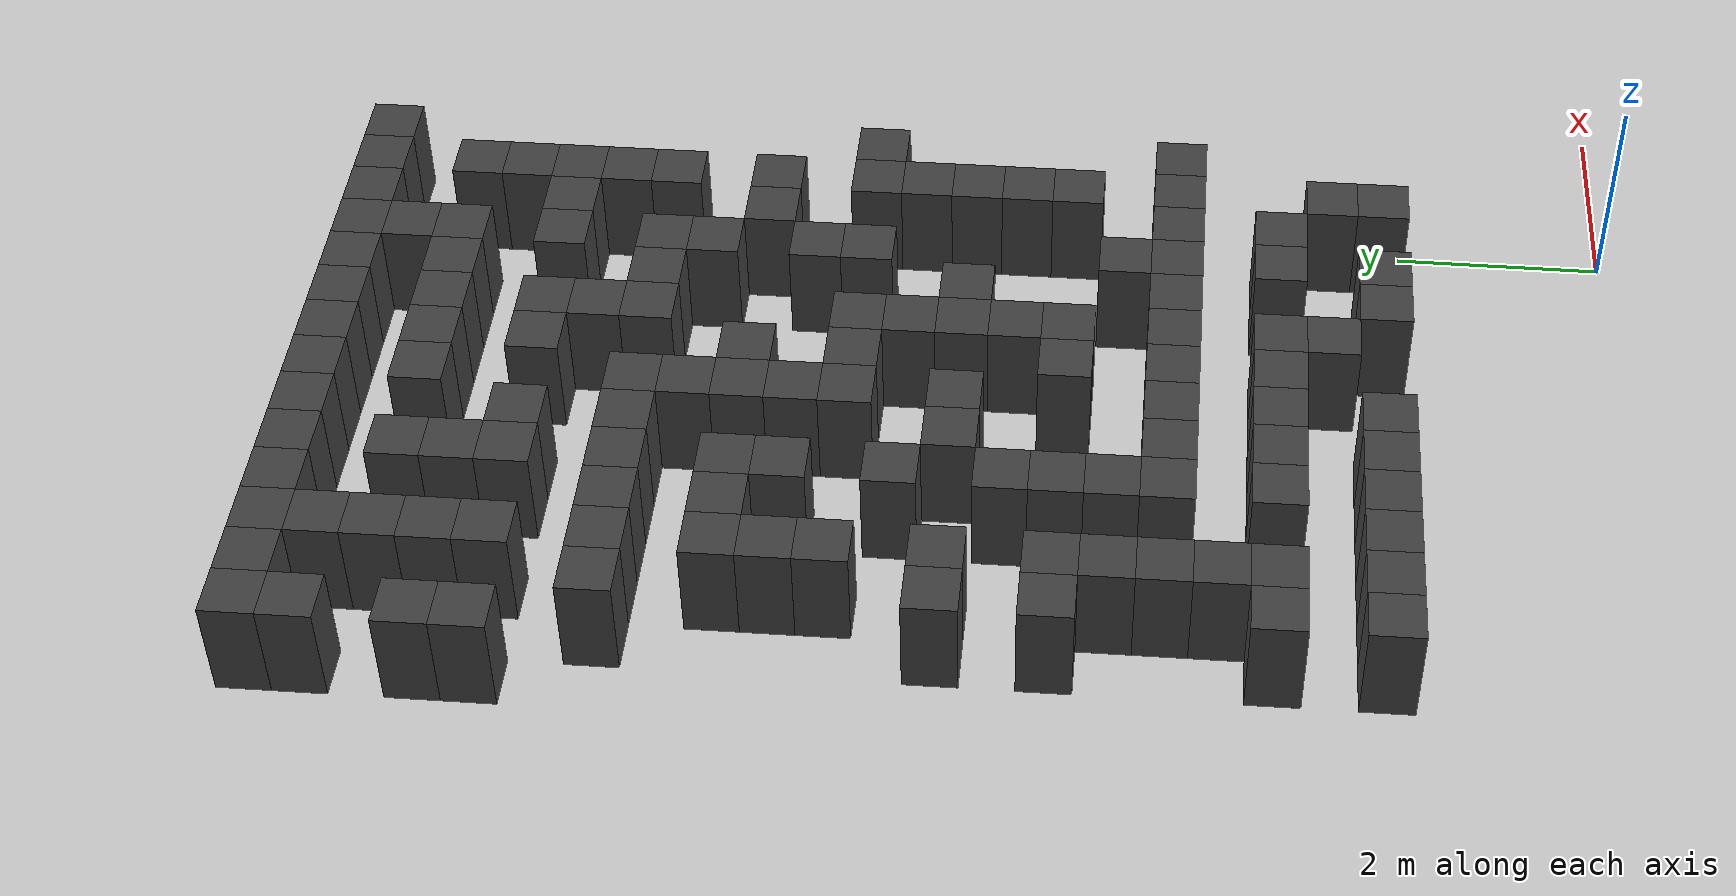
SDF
<sdf version="1.7">
 <world name="map_16588">
  <model name="ground_plane">
   <static>true</static>
   <link name="link">
    <collision name="collision">
     <geometry><plane><normal>0 0 1</normal><size>200 200</size></plane></geometry>
    </collision>
    <visual name="visual">
     <geometry><plane><normal>0 0 1</normal><size>200 200</size></plane></geometry>
     <material><ambient>0.8 0.8 0.8 1</ambient><diffuse>0.8 0.8 0.8 1</diffuse></material>
    </visual>
   </link>
  </model>
  <model name="maze_environment">
   <static>true</static>
   <link name="wall_12">
    <pose>-6.250 12.250 0.500 0 0 0</pose>
    <collision name="col"><geometry><box><size>0.5 0.5 1.0</size></box></geometry></collision>
    <visual name="vis">
     <geometry><box><size>0.5 0.5 1.0</size></box></geometry>
     <material><ambient>0.15 0.15 0.15 1</ambient><diffuse>0.25 0.25 0.25 1</diffuse></material>
    </visual>
   </link>
   <link name="wall_13">
    <pose>-5.750 12.250 0.500 0 0 0</pose>
    <collision name="col"><geometry><box><size>0.5 0.5 1.0</size></box></geometry></collision>
    <visual name="vis">
     <geometry><box><size>0.5 0.5 1.0</size></box></geometry>
     <material><ambient>0.15 0.15 0.15 1</ambient><diffuse>0.25 0.25 0.25 1</diffuse></material>
    </visual>
   </link>
   <link name="wall_14">
    <pose>-5.250 12.250 0.500 0 0 0</pose>
    <collision name="col"><geometry><box><size>0.5 0.5 1.0</size></box></geometry></collision>
    <visual name="vis">
     <geometry><box><size>0.5 0.5 1.0</size></box></geometry>
     <material><ambient>0.15 0.15 0.15 1</ambient><diffuse>0.25 0.25 0.25 1</diffuse></material>
    </visual>
   </link>
   <link name="wall_15">
    <pose>-4.750 12.250 0.500 0 0 0</pose>
    <collision name="col"><geometry><box><size>0.5 0.5 1.0</size></box></geometry></collision>
    <visual name="vis">
     <geometry><box><size>0.5 0.5 1.0</size></box></geometry>
     <material><ambient>0.15 0.15 0.15 1</ambient><diffuse>0.25 0.25 0.25 1</diffuse></material>
    </visual>
   </link>
   <link name="wall_16">
    <pose>-4.250 12.250 0.500 0 0 0</pose>
    <collision name="col"><geometry><box><size>0.5 0.5 1.0</size></box></geometry></collision>
    <visual name="vis">
     <geometry><box><size>0.5 0.5 1.0</size></box></geometry>
     <material><ambient>0.15 0.15 0.15 1</ambient><diffuse>0.25 0.25 0.25 1</diffuse></material>
    </visual>
   </link>
   <link name="wall_17">
    <pose>-3.750 12.250 0.500 0 0 0</pose>
    <collision name="col"><geometry><box><size>0.5 0.5 1.0</size></box></geometry></collision>
    <visual name="vis">
     <geometry><box><size>0.5 0.5 1.0</size></box></geometry>
     <material><ambient>0.15 0.15 0.15 1</ambient><diffuse>0.25 0.25 0.25 1</diffuse></material>
    </visual>
   </link>
   <link name="wall_18">
    <pose>-3.250 12.250 0.500 0 0 0</pose>
    <collision name="col"><geometry><box><size>0.5 0.5 1.0</size></box></geometry></collision>
    <visual name="vis">
     <geometry><box><size>0.5 0.5 1.0</size></box></geometry>
     <material><ambient>0.15 0.15 0.15 1</ambient><diffuse>0.25 0.25 0.25 1</diffuse></material>
    </visual>
   </link>
   <link name="wall_19">
    <pose>-2.750 12.250 0.500 0 0 0</pose>
    <collision name="col"><geometry><box><size>0.5 0.5 1.0</size></box></geometry></collision>
    <visual name="vis">
     <geometry><box><size>0.5 0.5 1.0</size></box></geometry>
     <material><ambient>0.15 0.15 0.15 1</ambient><diffuse>0.25 0.25 0.25 1</diffuse></material>
    </visual>
   </link>
   <link name="wall_20">
    <pose>-2.250 12.250 0.500 0 0 0</pose>
    <collision name="col"><geometry><box><size>0.5 0.5 1.0</size></box></geometry></collision>
    <visual name="vis">
     <geometry><box><size>0.5 0.5 1.0</size></box></geometry>
     <material><ambient>0.15 0.15 0.15 1</ambient><diffuse>0.25 0.25 0.25 1</diffuse></material>
    </visual>
   </link>
   <link name="wall_21">
    <pose>-1.750 12.250 0.500 0 0 0</pose>
    <collision name="col"><geometry><box><size>0.5 0.5 1.0</size></box></geometry></collision>
    <visual name="vis">
     <geometry><box><size>0.5 0.5 1.0</size></box></geometry>
     <material><ambient>0.15 0.15 0.15 1</ambient><diffuse>0.25 0.25 0.25 1</diffuse></material>
    </visual>
   </link>
   <link name="wall_22">
    <pose>-1.250 12.250 0.500 0 0 0</pose>
    <collision name="col"><geometry><box><size>0.5 0.5 1.0</size></box></geometry></collision>
    <visual name="vis">
     <geometry><box><size>0.5 0.5 1.0</size></box></geometry>
     <material><ambient>0.15 0.15 0.15 1</ambient><diffuse>0.25 0.25 0.25 1</diffuse></material>
    </visual>
   </link>
   <link name="wall_23">
    <pose>-0.750 12.250 0.500 0 0 0</pose>
    <collision name="col"><geometry><box><size>0.5 0.5 1.0</size></box></geometry></collision>
    <visual name="vis">
     <geometry><box><size>0.5 0.5 1.0</size></box></geometry>
     <material><ambient>0.15 0.15 0.15 1</ambient><diffuse>0.25 0.25 0.25 1</diffuse></material>
    </visual>
   </link>
   <link name="wall_24">
    <pose>-0.250 12.250 0.500 0 0 0</pose>
    <collision name="col"><geometry><box><size>0.5 0.5 1.0</size></box></geometry></collision>
    <visual name="vis">
     <geometry><box><size>0.5 0.5 1.0</size></box></geometry>
     <material><ambient>0.15 0.15 0.15 1</ambient><diffuse>0.25 0.25 0.25 1</diffuse></material>
    </visual>
   </link>
   <link name="wall_25">
    <pose>0.250 12.250 0.500 0 0 0</pose>
    <collision name="col"><geometry><box><size>0.5 0.5 1.0</size></box></geometry></collision>
    <visual name="vis">
     <geometry><box><size>0.5 0.5 1.0</size></box></geometry>
     <material><ambient>0.15 0.15 0.15 1</ambient><diffuse>0.25 0.25 0.25 1</diffuse></material>
    </visual>
   </link>
   <link name="wall_52">
    <pose>-6.250 11.750 0.500 0 0 0</pose>
    <collision name="col"><geometry><box><size>0.5 0.5 1.0</size></box></geometry></collision>
    <visual name="vis">
     <geometry><box><size>0.5 0.5 1.0</size></box></geometry>
     <material><ambient>0.15 0.15 0.15 1</ambient><diffuse>0.25 0.25 0.25 1</diffuse></material>
    </visual>
   </link>
   <link name="wall_53">
    <pose>-5.250 11.750 0.500 0 0 0</pose>
    <collision name="col"><geometry><box><size>0.5 0.5 1.0</size></box></geometry></collision>
    <visual name="vis">
     <geometry><box><size>0.5 0.5 1.0</size></box></geometry>
     <material><ambient>0.15 0.15 0.15 1</ambient><diffuse>0.25 0.25 0.25 1</diffuse></material>
    </visual>
   </link>
   <link name="wall_54">
    <pose>-1.250 11.750 0.500 0 0 0</pose>
    <collision name="col"><geometry><box><size>0.5 0.5 1.0</size></box></geometry></collision>
    <visual name="vis">
     <geometry><box><size>0.5 0.5 1.0</size></box></geometry>
     <material><ambient>0.15 0.15 0.15 1</ambient><diffuse>0.25 0.25 0.25 1</diffuse></material>
    </visual>
   </link>
   <link name="wall_67">
    <pose>-5.250 11.250 0.500 0 0 0</pose>
    <collision name="col"><geometry><box><size>0.5 0.5 1.0</size></box></geometry></collision>
    <visual name="vis">
     <geometry><box><size>0.5 0.5 1.0</size></box></geometry>
     <material><ambient>0.15 0.15 0.15 1</ambient><diffuse>0.25 0.25 0.25 1</diffuse></material>
    </visual>
   </link>
   <link name="wall_68">
    <pose>-4.250 11.250 0.500 0 0 0</pose>
    <collision name="col"><geometry><box><size>0.5 0.5 1.0</size></box></geometry></collision>
    <visual name="vis">
     <geometry><box><size>0.5 0.5 1.0</size></box></geometry>
     <material><ambient>0.15 0.15 0.15 1</ambient><diffuse>0.25 0.25 0.25 1</diffuse></material>
    </visual>
   </link>
   <link name="wall_69">
    <pose>-3.250 11.250 0.500 0 0 0</pose>
    <collision name="col"><geometry><box><size>0.5 0.5 1.0</size></box></geometry></collision>
    <visual name="vis">
     <geometry><box><size>0.5 0.5 1.0</size></box></geometry>
     <material><ambient>0.15 0.15 0.15 1</ambient><diffuse>0.25 0.25 0.25 1</diffuse></material>
    </visual>
   </link>
   <link name="wall_70">
    <pose>-2.750 11.250 0.500 0 0 0</pose>
    <collision name="col"><geometry><box><size>0.5 0.5 1.0</size></box></geometry></collision>
    <visual name="vis">
     <geometry><box><size>0.5 0.5 1.0</size></box></geometry>
     <material><ambient>0.15 0.15 0.15 1</ambient><diffuse>0.25 0.25 0.25 1</diffuse></material>
    </visual>
   </link>
   <link name="wall_71">
    <pose>-2.250 11.250 0.500 0 0 0</pose>
    <collision name="col"><geometry><box><size>0.5 0.5 1.0</size></box></geometry></collision>
    <visual name="vis">
     <geometry><box><size>0.5 0.5 1.0</size></box></geometry>
     <material><ambient>0.15 0.15 0.15 1</ambient><diffuse>0.25 0.25 0.25 1</diffuse></material>
    </visual>
   </link>
   <link name="wall_72">
    <pose>-1.750 11.250 0.500 0 0 0</pose>
    <collision name="col"><geometry><box><size>0.5 0.5 1.0</size></box></geometry></collision>
    <visual name="vis">
     <geometry><box><size>0.5 0.5 1.0</size></box></geometry>
     <material><ambient>0.15 0.15 0.15 1</ambient><diffuse>0.25 0.25 0.25 1</diffuse></material>
    </visual>
   </link>
   <link name="wall_73">
    <pose>-1.250 11.250 0.500 0 0 0</pose>
    <collision name="col"><geometry><box><size>0.5 0.5 1.0</size></box></geometry></collision>
    <visual name="vis">
     <geometry><box><size>0.5 0.5 1.0</size></box></geometry>
     <material><ambient>0.15 0.15 0.15 1</ambient><diffuse>0.25 0.25 0.25 1</diffuse></material>
    </visual>
   </link>
   <link name="wall_74">
    <pose>-0.250 11.250 0.500 0 0 0</pose>
    <collision name="col"><geometry><box><size>0.5 0.5 1.0</size></box></geometry></collision>
    <visual name="vis">
     <geometry><box><size>0.5 0.5 1.0</size></box></geometry>
     <material><ambient>0.15 0.15 0.15 1</ambient><diffuse>0.25 0.25 0.25 1</diffuse></material>
    </visual>
   </link>
   <link name="wall_97">
    <pose>-6.250 10.750 0.500 0 0 0</pose>
    <collision name="col"><geometry><box><size>0.5 0.5 1.0</size></box></geometry></collision>
    <visual name="vis">
     <geometry><box><size>0.5 0.5 1.0</size></box></geometry>
     <material><ambient>0.15 0.15 0.15 1</ambient><diffuse>0.25 0.25 0.25 1</diffuse></material>
    </visual>
   </link>
   <link name="wall_98">
    <pose>-5.250 10.750 0.500 0 0 0</pose>
    <collision name="col"><geometry><box><size>0.5 0.5 1.0</size></box></geometry></collision>
    <visual name="vis">
     <geometry><box><size>0.5 0.5 1.0</size></box></geometry>
     <material><ambient>0.15 0.15 0.15 1</ambient><diffuse>0.25 0.25 0.25 1</diffuse></material>
    </visual>
   </link>
   <link name="wall_99">
    <pose>-4.250 10.750 0.500 0 0 0</pose>
    <collision name="col"><geometry><box><size>0.5 0.5 1.0</size></box></geometry></collision>
    <visual name="vis">
     <geometry><box><size>0.5 0.5 1.0</size></box></geometry>
     <material><ambient>0.15 0.15 0.15 1</ambient><diffuse>0.25 0.25 0.25 1</diffuse></material>
    </visual>
   </link>
   <link name="wall_100">
    <pose>-0.250 10.750 0.500 0 0 0</pose>
    <collision name="col"><geometry><box><size>0.5 0.5 1.0</size></box></geometry></collision>
    <visual name="vis">
     <geometry><box><size>0.5 0.5 1.0</size></box></geometry>
     <material><ambient>0.15 0.15 0.15 1</ambient><diffuse>0.25 0.25 0.25 1</diffuse></material>
    </visual>
   </link>
   <link name="wall_115">
    <pose>-6.250 10.250 0.500 0 0 0</pose>
    <collision name="col"><geometry><box><size>0.5 0.5 1.0</size></box></geometry></collision>
    <visual name="vis">
     <geometry><box><size>0.5 0.5 1.0</size></box></geometry>
     <material><ambient>0.15 0.15 0.15 1</ambient><diffuse>0.25 0.25 0.25 1</diffuse></material>
    </visual>
   </link>
   <link name="wall_116">
    <pose>-5.250 10.250 0.500 0 0 0</pose>
    <collision name="col"><geometry><box><size>0.5 0.5 1.0</size></box></geometry></collision>
    <visual name="vis">
     <geometry><box><size>0.5 0.5 1.0</size></box></geometry>
     <material><ambient>0.15 0.15 0.15 1</ambient><diffuse>0.25 0.25 0.25 1</diffuse></material>
    </visual>
   </link>
   <link name="wall_117">
    <pose>-4.250 10.250 0.500 0 0 0</pose>
    <collision name="col"><geometry><box><size>0.5 0.5 1.0</size></box></geometry></collision>
    <visual name="vis">
     <geometry><box><size>0.5 0.5 1.0</size></box></geometry>
     <material><ambient>0.15 0.15 0.15 1</ambient><diffuse>0.25 0.25 0.25 1</diffuse></material>
    </visual>
   </link>
   <link name="wall_118">
    <pose>-3.750 10.250 0.500 0 0 0</pose>
    <collision name="col"><geometry><box><size>0.5 0.5 1.0</size></box></geometry></collision>
    <visual name="vis">
     <geometry><box><size>0.5 0.5 1.0</size></box></geometry>
     <material><ambient>0.15 0.15 0.15 1</ambient><diffuse>0.25 0.25 0.25 1</diffuse></material>
    </visual>
   </link>
   <link name="wall_119">
    <pose>-2.750 10.250 0.500 0 0 0</pose>
    <collision name="col"><geometry><box><size>0.5 0.5 1.0</size></box></geometry></collision>
    <visual name="vis">
     <geometry><box><size>0.5 0.5 1.0</size></box></geometry>
     <material><ambient>0.15 0.15 0.15 1</ambient><diffuse>0.25 0.25 0.25 1</diffuse></material>
    </visual>
   </link>
   <link name="wall_120">
    <pose>-2.250 10.250 0.500 0 0 0</pose>
    <collision name="col"><geometry><box><size>0.5 0.5 1.0</size></box></geometry></collision>
    <visual name="vis">
     <geometry><box><size>0.5 0.5 1.0</size></box></geometry>
     <material><ambient>0.15 0.15 0.15 1</ambient><diffuse>0.25 0.25 0.25 1</diffuse></material>
    </visual>
   </link>
   <link name="wall_121">
    <pose>-1.250 10.250 0.500 0 0 0</pose>
    <collision name="col"><geometry><box><size>0.5 0.5 1.0</size></box></geometry></collision>
    <visual name="vis">
     <geometry><box><size>0.5 0.5 1.0</size></box></geometry>
     <material><ambient>0.15 0.15 0.15 1</ambient><diffuse>0.25 0.25 0.25 1</diffuse></material>
    </visual>
   </link>
   <link name="wall_122">
    <pose>-0.750 10.250 0.500 0 0 0</pose>
    <collision name="col"><geometry><box><size>0.5 0.5 1.0</size></box></geometry></collision>
    <visual name="vis">
     <geometry><box><size>0.5 0.5 1.0</size></box></geometry>
     <material><ambient>0.15 0.15 0.15 1</ambient><diffuse>0.25 0.25 0.25 1</diffuse></material>
    </visual>
   </link>
   <link name="wall_123">
    <pose>-0.250 10.250 0.500 0 0 0</pose>
    <collision name="col"><geometry><box><size>0.5 0.5 1.0</size></box></geometry></collision>
    <visual name="vis">
     <geometry><box><size>0.5 0.5 1.0</size></box></geometry>
     <material><ambient>0.15 0.15 0.15 1</ambient><diffuse>0.25 0.25 0.25 1</diffuse></material>
    </visual>
   </link>
   <link name="wall_146">
    <pose>-2.250 9.750 0.500 0 0 0</pose>
    <collision name="col"><geometry><box><size>0.5 0.5 1.0</size></box></geometry></collision>
    <visual name="vis">
     <geometry><box><size>0.5 0.5 1.0</size></box></geometry>
     <material><ambient>0.15 0.15 0.15 1</ambient><diffuse>0.25 0.25 0.25 1</diffuse></material>
    </visual>
   </link>
   <link name="wall_147">
    <pose>-0.250 9.750 0.500 0 0 0</pose>
    <collision name="col"><geometry><box><size>0.5 0.5 1.0</size></box></geometry></collision>
    <visual name="vis">
     <geometry><box><size>0.5 0.5 1.0</size></box></geometry>
     <material><ambient>0.15 0.15 0.15 1</ambient><diffuse>0.25 0.25 0.25 1</diffuse></material>
    </visual>
   </link>
   <link name="wall_162">
    <pose>-5.750 9.250 0.500 0 0 0</pose>
    <collision name="col"><geometry><box><size>0.5 0.5 1.0</size></box></geometry></collision>
    <visual name="vis">
     <geometry><box><size>0.5 0.5 1.0</size></box></geometry>
     <material><ambient>0.15 0.15 0.15 1</ambient><diffuse>0.25 0.25 0.25 1</diffuse></material>
    </visual>
   </link>
   <link name="wall_163">
    <pose>-5.250 9.250 0.500 0 0 0</pose>
    <collision name="col"><geometry><box><size>0.5 0.5 1.0</size></box></geometry></collision>
    <visual name="vis">
     <geometry><box><size>0.5 0.5 1.0</size></box></geometry>
     <material><ambient>0.15 0.15 0.15 1</ambient><diffuse>0.25 0.25 0.25 1</diffuse></material>
    </visual>
   </link>
   <link name="wall_164">
    <pose>-4.750 9.250 0.500 0 0 0</pose>
    <collision name="col"><geometry><box><size>0.5 0.5 1.0</size></box></geometry></collision>
    <visual name="vis">
     <geometry><box><size>0.5 0.5 1.0</size></box></geometry>
     <material><ambient>0.15 0.15 0.15 1</ambient><diffuse>0.25 0.25 0.25 1</diffuse></material>
    </visual>
   </link>
   <link name="wall_165">
    <pose>-4.250 9.250 0.500 0 0 0</pose>
    <collision name="col"><geometry><box><size>0.5 0.5 1.0</size></box></geometry></collision>
    <visual name="vis">
     <geometry><box><size>0.5 0.5 1.0</size></box></geometry>
     <material><ambient>0.15 0.15 0.15 1</ambient><diffuse>0.25 0.25 0.25 1</diffuse></material>
    </visual>
   </link>
   <link name="wall_166">
    <pose>-3.750 9.250 0.500 0 0 0</pose>
    <collision name="col"><geometry><box><size>0.5 0.5 1.0</size></box></geometry></collision>
    <visual name="vis">
     <geometry><box><size>0.5 0.5 1.0</size></box></geometry>
     <material><ambient>0.15 0.15 0.15 1</ambient><diffuse>0.25 0.25 0.25 1</diffuse></material>
    </visual>
   </link>
   <link name="wall_167">
    <pose>-3.250 9.250 0.500 0 0 0</pose>
    <collision name="col"><geometry><box><size>0.5 0.5 1.0</size></box></geometry></collision>
    <visual name="vis">
     <geometry><box><size>0.5 0.5 1.0</size></box></geometry>
     <material><ambient>0.15 0.15 0.15 1</ambient><diffuse>0.25 0.25 0.25 1</diffuse></material>
    </visual>
   </link>
   <link name="wall_168">
    <pose>-2.250 9.250 0.500 0 0 0</pose>
    <collision name="col"><geometry><box><size>0.5 0.5 1.0</size></box></geometry></collision>
    <visual name="vis">
     <geometry><box><size>0.5 0.5 1.0</size></box></geometry>
     <material><ambient>0.15 0.15 0.15 1</ambient><diffuse>0.25 0.25 0.25 1</diffuse></material>
    </visual>
   </link>
   <link name="wall_169">
    <pose>-1.750 9.250 0.500 0 0 0</pose>
    <collision name="col"><geometry><box><size>0.5 0.5 1.0</size></box></geometry></collision>
    <visual name="vis">
     <geometry><box><size>0.5 0.5 1.0</size></box></geometry>
     <material><ambient>0.15 0.15 0.15 1</ambient><diffuse>0.25 0.25 0.25 1</diffuse></material>
    </visual>
   </link>
   <link name="wall_170">
    <pose>-1.250 9.250 0.500 0 0 0</pose>
    <collision name="col"><geometry><box><size>0.5 0.5 1.0</size></box></geometry></collision>
    <visual name="vis">
     <geometry><box><size>0.5 0.5 1.0</size></box></geometry>
     <material><ambient>0.15 0.15 0.15 1</ambient><diffuse>0.25 0.25 0.25 1</diffuse></material>
    </visual>
   </link>
   <link name="wall_171">
    <pose>-0.250 9.250 0.500 0 0 0</pose>
    <collision name="col"><geometry><box><size>0.5 0.5 1.0</size></box></geometry></collision>
    <visual name="vis">
     <geometry><box><size>0.5 0.5 1.0</size></box></geometry>
     <material><ambient>0.15 0.15 0.15 1</ambient><diffuse>0.25 0.25 0.25 1</diffuse></material>
    </visual>
   </link>
   <link name="wall_193">
    <pose>-3.250 8.750 0.500 0 0 0</pose>
    <collision name="col"><geometry><box><size>0.5 0.5 1.0</size></box></geometry></collision>
    <visual name="vis">
     <geometry><box><size>0.5 0.5 1.0</size></box></geometry>
     <material><ambient>0.15 0.15 0.15 1</ambient><diffuse>0.25 0.25 0.25 1</diffuse></material>
    </visual>
   </link>
   <link name="wall_194">
    <pose>-1.250 8.750 0.500 0 0 0</pose>
    <collision name="col"><geometry><box><size>0.5 0.5 1.0</size></box></geometry></collision>
    <visual name="vis">
     <geometry><box><size>0.5 0.5 1.0</size></box></geometry>
     <material><ambient>0.15 0.15 0.15 1</ambient><diffuse>0.25 0.25 0.25 1</diffuse></material>
    </visual>
   </link>
   <link name="wall_212">
    <pose>-5.250 8.250 0.500 0 0 0</pose>
    <collision name="col"><geometry><box><size>0.5 0.5 1.0</size></box></geometry></collision>
    <visual name="vis">
     <geometry><box><size>0.5 0.5 1.0</size></box></geometry>
     <material><ambient>0.15 0.15 0.15 1</ambient><diffuse>0.25 0.25 0.25 1</diffuse></material>
    </visual>
   </link>
   <link name="wall_213">
    <pose>-4.750 8.250 0.500 0 0 0</pose>
    <collision name="col"><geometry><box><size>0.5 0.5 1.0</size></box></geometry></collision>
    <visual name="vis">
     <geometry><box><size>0.5 0.5 1.0</size></box></geometry>
     <material><ambient>0.15 0.15 0.15 1</ambient><diffuse>0.25 0.25 0.25 1</diffuse></material>
    </visual>
   </link>
   <link name="wall_214">
    <pose>-4.250 8.250 0.500 0 0 0</pose>
    <collision name="col"><geometry><box><size>0.5 0.5 1.0</size></box></geometry></collision>
    <visual name="vis">
     <geometry><box><size>0.5 0.5 1.0</size></box></geometry>
     <material><ambient>0.15 0.15 0.15 1</ambient><diffuse>0.25 0.25 0.25 1</diffuse></material>
    </visual>
   </link>
   <link name="wall_215">
    <pose>-3.250 8.250 0.500 0 0 0</pose>
    <collision name="col"><geometry><box><size>0.5 0.5 1.0</size></box></geometry></collision>
    <visual name="vis">
     <geometry><box><size>0.5 0.5 1.0</size></box></geometry>
     <material><ambient>0.15 0.15 0.15 1</ambient><diffuse>0.25 0.25 0.25 1</diffuse></material>
    </visual>
   </link>
   <link name="wall_216">
    <pose>-2.750 8.250 0.500 0 0 0</pose>
    <collision name="col"><geometry><box><size>0.5 0.5 1.0</size></box></geometry></collision>
    <visual name="vis">
     <geometry><box><size>0.5 0.5 1.0</size></box></geometry>
     <material><ambient>0.15 0.15 0.15 1</ambient><diffuse>0.25 0.25 0.25 1</diffuse></material>
    </visual>
   </link>
   <link name="wall_217">
    <pose>-0.750 8.250 0.500 0 0 0</pose>
    <collision name="col"><geometry><box><size>0.5 0.5 1.0</size></box></geometry></collision>
    <visual name="vis">
     <geometry><box><size>0.5 0.5 1.0</size></box></geometry>
     <material><ambient>0.15 0.15 0.15 1</ambient><diffuse>0.25 0.25 0.25 1</diffuse></material>
    </visual>
   </link>
   <link name="wall_218">
    <pose>-0.250 8.250 0.500 0 0 0</pose>
    <collision name="col"><geometry><box><size>0.5 0.5 1.0</size></box></geometry></collision>
    <visual name="vis">
     <geometry><box><size>0.5 0.5 1.0</size></box></geometry>
     <material><ambient>0.15 0.15 0.15 1</ambient><diffuse>0.25 0.25 0.25 1</diffuse></material>
    </visual>
   </link>
   <link name="wall_237">
    <pose>-5.250 7.750 0.500 0 0 0</pose>
    <collision name="col"><geometry><box><size>0.5 0.5 1.0</size></box></geometry></collision>
    <visual name="vis">
     <geometry><box><size>0.5 0.5 1.0</size></box></geometry>
     <material><ambient>0.15 0.15 0.15 1</ambient><diffuse>0.25 0.25 0.25 1</diffuse></material>
    </visual>
   </link>
   <link name="wall_238">
    <pose>-4.250 7.750 0.500 0 0 0</pose>
    <collision name="col"><geometry><box><size>0.5 0.5 1.0</size></box></geometry></collision>
    <visual name="vis">
     <geometry><box><size>0.5 0.5 1.0</size></box></geometry>
     <material><ambient>0.15 0.15 0.15 1</ambient><diffuse>0.25 0.25 0.25 1</diffuse></material>
    </visual>
   </link>
   <link name="wall_239">
    <pose>-3.250 7.750 0.500 0 0 0</pose>
    <collision name="col"><geometry><box><size>0.5 0.5 1.0</size></box></geometry></collision>
    <visual name="vis">
     <geometry><box><size>0.5 0.5 1.0</size></box></geometry>
     <material><ambient>0.15 0.15 0.15 1</ambient><diffuse>0.25 0.25 0.25 1</diffuse></material>
    </visual>
   </link>
   <link name="wall_240">
    <pose>-1.250 7.750 0.500 0 0 0</pose>
    <collision name="col"><geometry><box><size>0.5 0.5 1.0</size></box></geometry></collision>
    <visual name="vis">
     <geometry><box><size>0.5 0.5 1.0</size></box></geometry>
     <material><ambient>0.15 0.15 0.15 1</ambient><diffuse>0.25 0.25 0.25 1</diffuse></material>
    </visual>
   </link>
   <link name="wall_259">
    <pose>-5.250 7.250 0.500 0 0 0</pose>
    <collision name="col"><geometry><box><size>0.5 0.5 1.0</size></box></geometry></collision>
    <visual name="vis">
     <geometry><box><size>0.5 0.5 1.0</size></box></geometry>
     <material><ambient>0.15 0.15 0.15 1</ambient><diffuse>0.25 0.25 0.25 1</diffuse></material>
    </visual>
   </link>
   <link name="wall_260">
    <pose>-3.250 7.250 0.500 0 0 0</pose>
    <collision name="col"><geometry><box><size>0.5 0.5 1.0</size></box></geometry></collision>
    <visual name="vis">
     <geometry><box><size>0.5 0.5 1.0</size></box></geometry>
     <material><ambient>0.15 0.15 0.15 1</ambient><diffuse>0.25 0.25 0.25 1</diffuse></material>
    </visual>
   </link>
   <link name="wall_261">
    <pose>-2.750 7.250 0.500 0 0 0</pose>
    <collision name="col"><geometry><box><size>0.5 0.5 1.0</size></box></geometry></collision>
    <visual name="vis">
     <geometry><box><size>0.5 0.5 1.0</size></box></geometry>
     <material><ambient>0.15 0.15 0.15 1</ambient><diffuse>0.25 0.25 0.25 1</diffuse></material>
    </visual>
   </link>
   <link name="wall_262">
    <pose>-2.250 7.250 0.500 0 0 0</pose>
    <collision name="col"><geometry><box><size>0.5 0.5 1.0</size></box></geometry></collision>
    <visual name="vis">
     <geometry><box><size>0.5 0.5 1.0</size></box></geometry>
     <material><ambient>0.15 0.15 0.15 1</ambient><diffuse>0.25 0.25 0.25 1</diffuse></material>
    </visual>
   </link>
   <link name="wall_263">
    <pose>-1.250 7.250 0.500 0 0 0</pose>
    <collision name="col"><geometry><box><size>0.5 0.5 1.0</size></box></geometry></collision>
    <visual name="vis">
     <geometry><box><size>0.5 0.5 1.0</size></box></geometry>
     <material><ambient>0.15 0.15 0.15 1</ambient><diffuse>0.25 0.25 0.25 1</diffuse></material>
    </visual>
   </link>
   <link name="wall_264">
    <pose>-0.250 7.250 0.500 0 0 0</pose>
    <collision name="col"><geometry><box><size>0.5 0.5 1.0</size></box></geometry></collision>
    <visual name="vis">
     <geometry><box><size>0.5 0.5 1.0</size></box></geometry>
     <material><ambient>0.15 0.15 0.15 1</ambient><diffuse>0.25 0.25 0.25 1</diffuse></material>
    </visual>
   </link>
   <link name="wall_265">
    <pose>0.250 7.250 0.500 0 0 0</pose>
    <collision name="col"><geometry><box><size>0.5 0.5 1.0</size></box></geometry></collision>
    <visual name="vis">
     <geometry><box><size>0.5 0.5 1.0</size></box></geometry>
     <material><ambient>0.15 0.15 0.15 1</ambient><diffuse>0.25 0.25 0.25 1</diffuse></material>
    </visual>
   </link>
   <link name="wall_286">
    <pose>-4.250 6.750 0.500 0 0 0</pose>
    <collision name="col"><geometry><box><size>0.5 0.5 1.0</size></box></geometry></collision>
    <visual name="vis">
     <geometry><box><size>0.5 0.5 1.0</size></box></geometry>
     <material><ambient>0.15 0.15 0.15 1</ambient><diffuse>0.25 0.25 0.25 1</diffuse></material>
    </visual>
   </link>
   <link name="wall_287">
    <pose>-2.250 6.750 0.500 0 0 0</pose>
    <collision name="col"><geometry><box><size>0.5 0.5 1.0</size></box></geometry></collision>
    <visual name="vis">
     <geometry><box><size>0.5 0.5 1.0</size></box></geometry>
     <material><ambient>0.15 0.15 0.15 1</ambient><diffuse>0.25 0.25 0.25 1</diffuse></material>
    </visual>
   </link>
   <link name="wall_288">
    <pose>-0.250 6.750 0.500 0 0 0</pose>
    <collision name="col"><geometry><box><size>0.5 0.5 1.0</size></box></geometry></collision>
    <visual name="vis">
     <geometry><box><size>0.5 0.5 1.0</size></box></geometry>
     <material><ambient>0.15 0.15 0.15 1</ambient><diffuse>0.25 0.25 0.25 1</diffuse></material>
    </visual>
   </link>
   <link name="wall_305">
    <pose>-5.750 6.250 0.500 0 0 0</pose>
    <collision name="col"><geometry><box><size>0.5 0.5 1.0</size></box></geometry></collision>
    <visual name="vis">
     <geometry><box><size>0.5 0.5 1.0</size></box></geometry>
     <material><ambient>0.15 0.15 0.15 1</ambient><diffuse>0.25 0.25 0.25 1</diffuse></material>
    </visual>
   </link>
   <link name="wall_306">
    <pose>-5.250 6.250 0.500 0 0 0</pose>
    <collision name="col"><geometry><box><size>0.5 0.5 1.0</size></box></geometry></collision>
    <visual name="vis">
     <geometry><box><size>0.5 0.5 1.0</size></box></geometry>
     <material><ambient>0.15 0.15 0.15 1</ambient><diffuse>0.25 0.25 0.25 1</diffuse></material>
    </visual>
   </link>
   <link name="wall_307">
    <pose>-3.750 6.250 0.500 0 0 0</pose>
    <collision name="col"><geometry><box><size>0.5 0.5 1.0</size></box></geometry></collision>
    <visual name="vis">
     <geometry><box><size>0.5 0.5 1.0</size></box></geometry>
     <material><ambient>0.15 0.15 0.15 1</ambient><diffuse>0.25 0.25 0.25 1</diffuse></material>
    </visual>
   </link>
   <link name="wall_308">
    <pose>-3.250 6.250 0.500 0 0 0</pose>
    <collision name="col"><geometry><box><size>0.5 0.5 1.0</size></box></geometry></collision>
    <visual name="vis">
     <geometry><box><size>0.5 0.5 1.0</size></box></geometry>
     <material><ambient>0.15 0.15 0.15 1</ambient><diffuse>0.25 0.25 0.25 1</diffuse></material>
    </visual>
   </link>
   <link name="wall_309">
    <pose>-2.250 6.250 0.500 0 0 0</pose>
    <collision name="col"><geometry><box><size>0.5 0.5 1.0</size></box></geometry></collision>
    <visual name="vis">
     <geometry><box><size>0.5 0.5 1.0</size></box></geometry>
     <material><ambient>0.15 0.15 0.15 1</ambient><diffuse>0.25 0.25 0.25 1</diffuse></material>
    </visual>
   </link>
   <link name="wall_310">
    <pose>-1.750 6.250 0.500 0 0 0</pose>
    <collision name="col"><geometry><box><size>0.5 0.5 1.0</size></box></geometry></collision>
    <visual name="vis">
     <geometry><box><size>0.5 0.5 1.0</size></box></geometry>
     <material><ambient>0.15 0.15 0.15 1</ambient><diffuse>0.25 0.25 0.25 1</diffuse></material>
    </visual>
   </link>
   <link name="wall_311">
    <pose>-0.250 6.250 0.500 0 0 0</pose>
    <collision name="col"><geometry><box><size>0.5 0.5 1.0</size></box></geometry></collision>
    <visual name="vis">
     <geometry><box><size>0.5 0.5 1.0</size></box></geometry>
     <material><ambient>0.15 0.15 0.15 1</ambient><diffuse>0.25 0.25 0.25 1</diffuse></material>
    </visual>
   </link>
   <link name="wall_337">
    <pose>-4.250 5.750 0.500 0 0 0</pose>
    <collision name="col"><geometry><box><size>0.5 0.5 1.0</size></box></geometry></collision>
    <visual name="vis">
     <geometry><box><size>0.5 0.5 1.0</size></box></geometry>
     <material><ambient>0.15 0.15 0.15 1</ambient><diffuse>0.25 0.25 0.25 1</diffuse></material>
    </visual>
   </link>
   <link name="wall_338">
    <pose>-2.250 5.750 0.500 0 0 0</pose>
    <collision name="col"><geometry><box><size>0.5 0.5 1.0</size></box></geometry></collision>
    <visual name="vis">
     <geometry><box><size>0.5 0.5 1.0</size></box></geometry>
     <material><ambient>0.15 0.15 0.15 1</ambient><diffuse>0.25 0.25 0.25 1</diffuse></material>
    </visual>
   </link>
   <link name="wall_339">
    <pose>-0.250 5.750 0.500 0 0 0</pose>
    <collision name="col"><geometry><box><size>0.5 0.5 1.0</size></box></geometry></collision>
    <visual name="vis">
     <geometry><box><size>0.5 0.5 1.0</size></box></geometry>
     <material><ambient>0.15 0.15 0.15 1</ambient><diffuse>0.25 0.25 0.25 1</diffuse></material>
    </visual>
   </link>
   <link name="wall_352">
    <pose>-5.750 5.250 0.500 0 0 0</pose>
    <collision name="col"><geometry><box><size>0.5 0.5 1.0</size></box></geometry></collision>
    <visual name="vis">
     <geometry><box><size>0.5 0.5 1.0</size></box></geometry>
     <material><ambient>0.15 0.15 0.15 1</ambient><diffuse>0.25 0.25 0.25 1</diffuse></material>
    </visual>
   </link>
   <link name="wall_353">
    <pose>-5.250 5.250 0.500 0 0 0</pose>
    <collision name="col"><geometry><box><size>0.5 0.5 1.0</size></box></geometry></collision>
    <visual name="vis">
     <geometry><box><size>0.5 0.5 1.0</size></box></geometry>
     <material><ambient>0.15 0.15 0.15 1</ambient><diffuse>0.25 0.25 0.25 1</diffuse></material>
    </visual>
   </link>
   <link name="wall_354">
    <pose>-4.250 5.250 0.500 0 0 0</pose>
    <collision name="col"><geometry><box><size>0.5 0.5 1.0</size></box></geometry></collision>
    <visual name="vis">
     <geometry><box><size>0.5 0.5 1.0</size></box></geometry>
     <material><ambient>0.15 0.15 0.15 1</ambient><diffuse>0.25 0.25 0.25 1</diffuse></material>
    </visual>
   </link>
   <link name="wall_355">
    <pose>-2.750 5.250 0.500 0 0 0</pose>
    <collision name="col"><geometry><box><size>0.5 0.5 1.0</size></box></geometry></collision>
    <visual name="vis">
     <geometry><box><size>0.5 0.5 1.0</size></box></geometry>
     <material><ambient>0.15 0.15 0.15 1</ambient><diffuse>0.25 0.25 0.25 1</diffuse></material>
    </visual>
   </link>
   <link name="wall_356">
    <pose>-2.250 5.250 0.500 0 0 0</pose>
    <collision name="col"><geometry><box><size>0.5 0.5 1.0</size></box></geometry></collision>
    <visual name="vis">
     <geometry><box><size>0.5 0.5 1.0</size></box></geometry>
     <material><ambient>0.15 0.15 0.15 1</ambient><diffuse>0.25 0.25 0.25 1</diffuse></material>
    </visual>
   </link>
   <link name="wall_357">
    <pose>-0.250 5.250 0.500 0 0 0</pose>
    <collision name="col"><geometry><box><size>0.5 0.5 1.0</size></box></geometry></collision>
    <visual name="vis">
     <geometry><box><size>0.5 0.5 1.0</size></box></geometry>
     <material><ambient>0.15 0.15 0.15 1</ambient><diffuse>0.25 0.25 0.25 1</diffuse></material>
    </visual>
   </link>
   <link name="wall_378">
    <pose>-5.250 4.750 0.500 0 0 0</pose>
    <collision name="col"><geometry><box><size>0.5 0.5 1.0</size></box></geometry></collision>
    <visual name="vis">
     <geometry><box><size>0.5 0.5 1.0</size></box></geometry>
     <material><ambient>0.15 0.15 0.15 1</ambient><diffuse>0.25 0.25 0.25 1</diffuse></material>
    </visual>
   </link>
   <link name="wall_379">
    <pose>-4.250 4.750 0.500 0 0 0</pose>
    <collision name="col"><geometry><box><size>0.5 0.5 1.0</size></box></geometry></collision>
    <visual name="vis">
     <geometry><box><size>0.5 0.5 1.0</size></box></geometry>
     <material><ambient>0.15 0.15 0.15 1</ambient><diffuse>0.25 0.25 0.25 1</diffuse></material>
    </visual>
   </link>
   <link name="wall_380">
    <pose>-1.250 4.750 0.500 0 0 0</pose>
    <collision name="col"><geometry><box><size>0.5 0.5 1.0</size></box></geometry></collision>
    <visual name="vis">
     <geometry><box><size>0.5 0.5 1.0</size></box></geometry>
     <material><ambient>0.15 0.15 0.15 1</ambient><diffuse>0.25 0.25 0.25 1</diffuse></material>
    </visual>
   </link>
   <link name="wall_396">
    <pose>-5.250 4.250 0.500 0 0 0</pose>
    <collision name="col"><geometry><box><size>0.5 0.5 1.0</size></box></geometry></collision>
    <visual name="vis">
     <geometry><box><size>0.5 0.5 1.0</size></box></geometry>
     <material><ambient>0.15 0.15 0.15 1</ambient><diffuse>0.25 0.25 0.25 1</diffuse></material>
    </visual>
   </link>
   <link name="wall_397">
    <pose>-4.250 4.250 0.500 0 0 0</pose>
    <collision name="col"><geometry><box><size>0.5 0.5 1.0</size></box></geometry></collision>
    <visual name="vis">
     <geometry><box><size>0.5 0.5 1.0</size></box></geometry>
     <material><ambient>0.15 0.15 0.15 1</ambient><diffuse>0.25 0.25 0.25 1</diffuse></material>
    </visual>
   </link>
   <link name="wall_398">
    <pose>-3.750 4.250 0.500 0 0 0</pose>
    <collision name="col"><geometry><box><size>0.5 0.5 1.0</size></box></geometry></collision>
    <visual name="vis">
     <geometry><box><size>0.5 0.5 1.0</size></box></geometry>
     <material><ambient>0.15 0.15 0.15 1</ambient><diffuse>0.25 0.25 0.25 1</diffuse></material>
    </visual>
   </link>
   <link name="wall_399">
    <pose>-3.250 4.250 0.500 0 0 0</pose>
    <collision name="col"><geometry><box><size>0.5 0.5 1.0</size></box></geometry></collision>
    <visual name="vis">
     <geometry><box><size>0.5 0.5 1.0</size></box></geometry>
     <material><ambient>0.15 0.15 0.15 1</ambient><diffuse>0.25 0.25 0.25 1</diffuse></material>
    </visual>
   </link>
   <link name="wall_400">
    <pose>-2.750 4.250 0.500 0 0 0</pose>
    <collision name="col"><geometry><box><size>0.5 0.5 1.0</size></box></geometry></collision>
    <visual name="vis">
     <geometry><box><size>0.5 0.5 1.0</size></box></geometry>
     <material><ambient>0.15 0.15 0.15 1</ambient><diffuse>0.25 0.25 0.25 1</diffuse></material>
    </visual>
   </link>
   <link name="wall_401">
    <pose>-2.250 4.250 0.500 0 0 0</pose>
    <collision name="col"><geometry><box><size>0.5 0.5 1.0</size></box></geometry></collision>
    <visual name="vis">
     <geometry><box><size>0.5 0.5 1.0</size></box></geometry>
     <material><ambient>0.15 0.15 0.15 1</ambient><diffuse>0.25 0.25 0.25 1</diffuse></material>
    </visual>
   </link>
   <link name="wall_402">
    <pose>-1.750 4.250 0.500 0 0 0</pose>
    <collision name="col"><geometry><box><size>0.5 0.5 1.0</size></box></geometry></collision>
    <visual name="vis">
     <geometry><box><size>0.5 0.5 1.0</size></box></geometry>
     <material><ambient>0.15 0.15 0.15 1</ambient><diffuse>0.25 0.25 0.25 1</diffuse></material>
    </visual>
   </link>
   <link name="wall_403">
    <pose>-1.250 4.250 0.500 0 0 0</pose>
    <collision name="col"><geometry><box><size>0.5 0.5 1.0</size></box></geometry></collision>
    <visual name="vis">
     <geometry><box><size>0.5 0.5 1.0</size></box></geometry>
     <material><ambient>0.15 0.15 0.15 1</ambient><diffuse>0.25 0.25 0.25 1</diffuse></material>
    </visual>
   </link>
   <link name="wall_404">
    <pose>-0.750 4.250 0.500 0 0 0</pose>
    <collision name="col"><geometry><box><size>0.5 0.5 1.0</size></box></geometry></collision>
    <visual name="vis">
     <geometry><box><size>0.5 0.5 1.0</size></box></geometry>
     <material><ambient>0.15 0.15 0.15 1</ambient><diffuse>0.25 0.25 0.25 1</diffuse></material>
    </visual>
   </link>
   <link name="wall_405">
    <pose>-0.250 4.250 0.500 0 0 0</pose>
    <collision name="col"><geometry><box><size>0.5 0.5 1.0</size></box></geometry></collision>
    <visual name="vis">
     <geometry><box><size>0.5 0.5 1.0</size></box></geometry>
     <material><ambient>0.15 0.15 0.15 1</ambient><diffuse>0.25 0.25 0.25 1</diffuse></material>
    </visual>
   </link>
   <link name="wall_406">
    <pose>0.250 4.250 0.500 0 0 0</pose>
    <collision name="col"><geometry><box><size>0.5 0.5 1.0</size></box></geometry></collision>
    <visual name="vis">
     <geometry><box><size>0.5 0.5 1.0</size></box></geometry>
     <material><ambient>0.15 0.15 0.15 1</ambient><diffuse>0.25 0.25 0.25 1</diffuse></material>
    </visual>
   </link>
   <link name="wall_427">
    <pose>-5.250 3.750 0.500 0 0 0</pose>
    <collision name="col"><geometry><box><size>0.5 0.5 1.0</size></box></geometry></collision>
    <visual name="vis">
     <geometry><box><size>0.5 0.5 1.0</size></box></geometry>
     <material><ambient>0.15 0.15 0.15 1</ambient><diffuse>0.25 0.25 0.25 1</diffuse></material>
    </visual>
   </link>
   <link name="wall_444">
    <pose>-5.750 3.250 0.500 0 0 0</pose>
    <collision name="col"><geometry><box><size>0.5 0.5 1.0</size></box></geometry></collision>
    <visual name="vis">
     <geometry><box><size>0.5 0.5 1.0</size></box></geometry>
     <material><ambient>0.15 0.15 0.15 1</ambient><diffuse>0.25 0.25 0.25 1</diffuse></material>
    </visual>
   </link>
   <link name="wall_445">
    <pose>-5.250 3.250 0.500 0 0 0</pose>
    <collision name="col"><geometry><box><size>0.5 0.5 1.0</size></box></geometry></collision>
    <visual name="vis">
     <geometry><box><size>0.5 0.5 1.0</size></box></geometry>
     <material><ambient>0.15 0.15 0.15 1</ambient><diffuse>0.25 0.25 0.25 1</diffuse></material>
    </visual>
   </link>
   <link name="wall_446">
    <pose>-4.250 3.250 0.500 0 0 0</pose>
    <collision name="col"><geometry><box><size>0.5 0.5 1.0</size></box></geometry></collision>
    <visual name="vis">
     <geometry><box><size>0.5 0.5 1.0</size></box></geometry>
     <material><ambient>0.15 0.15 0.15 1</ambient><diffuse>0.25 0.25 0.25 1</diffuse></material>
    </visual>
   </link>
   <link name="wall_447">
    <pose>-3.750 3.250 0.500 0 0 0</pose>
    <collision name="col"><geometry><box><size>0.5 0.5 1.0</size></box></geometry></collision>
    <visual name="vis">
     <geometry><box><size>0.5 0.5 1.0</size></box></geometry>
     <material><ambient>0.15 0.15 0.15 1</ambient><diffuse>0.25 0.25 0.25 1</diffuse></material>
    </visual>
   </link>
   <link name="wall_448">
    <pose>-3.250 3.250 0.500 0 0 0</pose>
    <collision name="col"><geometry><box><size>0.5 0.5 1.0</size></box></geometry></collision>
    <visual name="vis">
     <geometry><box><size>0.5 0.5 1.0</size></box></geometry>
     <material><ambient>0.15 0.15 0.15 1</ambient><diffuse>0.25 0.25 0.25 1</diffuse></material>
    </visual>
   </link>
   <link name="wall_449">
    <pose>-2.750 3.250 0.500 0 0 0</pose>
    <collision name="col"><geometry><box><size>0.5 0.5 1.0</size></box></geometry></collision>
    <visual name="vis">
     <geometry><box><size>0.5 0.5 1.0</size></box></geometry>
     <material><ambient>0.15 0.15 0.15 1</ambient><diffuse>0.25 0.25 0.25 1</diffuse></material>
    </visual>
   </link>
   <link name="wall_450">
    <pose>-2.250 3.250 0.500 0 0 0</pose>
    <collision name="col"><geometry><box><size>0.5 0.5 1.0</size></box></geometry></collision>
    <visual name="vis">
     <geometry><box><size>0.5 0.5 1.0</size></box></geometry>
     <material><ambient>0.15 0.15 0.15 1</ambient><diffuse>0.25 0.25 0.25 1</diffuse></material>
    </visual>
   </link>
   <link name="wall_451">
    <pose>-1.250 3.250 0.500 0 0 0</pose>
    <collision name="col"><geometry><box><size>0.5 0.5 1.0</size></box></geometry></collision>
    <visual name="vis">
     <geometry><box><size>0.5 0.5 1.0</size></box></geometry>
     <material><ambient>0.15 0.15 0.15 1</ambient><diffuse>0.25 0.25 0.25 1</diffuse></material>
    </visual>
   </link>
   <link name="wall_452">
    <pose>-0.750 3.250 0.500 0 0 0</pose>
    <collision name="col"><geometry><box><size>0.5 0.5 1.0</size></box></geometry></collision>
    <visual name="vis">
     <geometry><box><size>0.5 0.5 1.0</size></box></geometry>
     <material><ambient>0.15 0.15 0.15 1</ambient><diffuse>0.25 0.25 0.25 1</diffuse></material>
    </visual>
   </link>
   <link name="wall_474">
    <pose>-2.250 2.750 0.500 0 0 0</pose>
    <collision name="col"><geometry><box><size>0.5 0.5 1.0</size></box></geometry></collision>
    <visual name="vis">
     <geometry><box><size>0.5 0.5 1.0</size></box></geometry>
     <material><ambient>0.15 0.15 0.15 1</ambient><diffuse>0.25 0.25 0.25 1</diffuse></material>
    </visual>
   </link>
   <link name="wall_475">
    <pose>-0.250 2.750 0.500 0 0 0</pose>
    <collision name="col"><geometry><box><size>0.5 0.5 1.0</size></box></geometry></collision>
    <visual name="vis">
     <geometry><box><size>0.5 0.5 1.0</size></box></geometry>
     <material><ambient>0.15 0.15 0.15 1</ambient><diffuse>0.25 0.25 0.25 1</diffuse></material>
    </visual>
   </link>
   <link name="wall_492">
    <pose>-5.750 2.250 0.500 0 0 0</pose>
    <collision name="col"><geometry><box><size>0.5 0.5 1.0</size></box></geometry></collision>
    <visual name="vis">
     <geometry><box><size>0.5 0.5 1.0</size></box></geometry>
     <material><ambient>0.15 0.15 0.15 1</ambient><diffuse>0.25 0.25 0.25 1</diffuse></material>
    </visual>
   </link>
   <link name="wall_493">
    <pose>-5.250 2.250 0.500 0 0 0</pose>
    <collision name="col"><geometry><box><size>0.5 0.5 1.0</size></box></geometry></collision>
    <visual name="vis">
     <geometry><box><size>0.5 0.5 1.0</size></box></geometry>
     <material><ambient>0.15 0.15 0.15 1</ambient><diffuse>0.25 0.25 0.25 1</diffuse></material>
    </visual>
   </link>
   <link name="wall_494">
    <pose>-4.750 2.250 0.500 0 0 0</pose>
    <collision name="col"><geometry><box><size>0.5 0.5 1.0</size></box></geometry></collision>
    <visual name="vis">
     <geometry><box><size>0.5 0.5 1.0</size></box></geometry>
     <material><ambient>0.15 0.15 0.15 1</ambient><diffuse>0.25 0.25 0.25 1</diffuse></material>
    </visual>
   </link>
   <link name="wall_495">
    <pose>-4.250 2.250 0.500 0 0 0</pose>
    <collision name="col"><geometry><box><size>0.5 0.5 1.0</size></box></geometry></collision>
    <visual name="vis">
     <geometry><box><size>0.5 0.5 1.0</size></box></geometry>
     <material><ambient>0.15 0.15 0.15 1</ambient><diffuse>0.25 0.25 0.25 1</diffuse></material>
    </visual>
   </link>
   <link name="wall_496">
    <pose>-3.750 2.250 0.500 0 0 0</pose>
    <collision name="col"><geometry><box><size>0.5 0.5 1.0</size></box></geometry></collision>
    <visual name="vis">
     <geometry><box><size>0.5 0.5 1.0</size></box></geometry>
     <material><ambient>0.15 0.15 0.15 1</ambient><diffuse>0.25 0.25 0.25 1</diffuse></material>
    </visual>
   </link>
   <link name="wall_497">
    <pose>-3.250 2.250 0.500 0 0 0</pose>
    <collision name="col"><geometry><box><size>0.5 0.5 1.0</size></box></geometry></collision>
    <visual name="vis">
     <geometry><box><size>0.5 0.5 1.0</size></box></geometry>
     <material><ambient>0.15 0.15 0.15 1</ambient><diffuse>0.25 0.25 0.25 1</diffuse></material>
    </visual>
   </link>
   <link name="wall_498">
    <pose>-1.750 2.250 0.500 0 0 0</pose>
    <collision name="col"><geometry><box><size>0.5 0.5 1.0</size></box></geometry></collision>
    <visual name="vis">
     <geometry><box><size>0.5 0.5 1.0</size></box></geometry>
     <material><ambient>0.15 0.15 0.15 1</ambient><diffuse>0.25 0.25 0.25 1</diffuse></material>
    </visual>
   </link>
   <link name="wall_499">
    <pose>-1.250 2.250 0.500 0 0 0</pose>
    <collision name="col"><geometry><box><size>0.5 0.5 1.0</size></box></geometry></collision>
    <visual name="vis">
     <geometry><box><size>0.5 0.5 1.0</size></box></geometry>
     <material><ambient>0.15 0.15 0.15 1</ambient><diffuse>0.25 0.25 0.25 1</diffuse></material>
    </visual>
   </link>
   <link name="wall_500">
    <pose>-0.250 2.250 0.500 0 0 0</pose>
    <collision name="col"><geometry><box><size>0.5 0.5 1.0</size></box></geometry></collision>
    <visual name="vis">
     <geometry><box><size>0.5 0.5 1.0</size></box></geometry>
     <material><ambient>0.15 0.15 0.15 1</ambient><diffuse>0.25 0.25 0.25 1</diffuse></material>
    </visual>
   </link>
  </model>
 </world>
</sdf>
